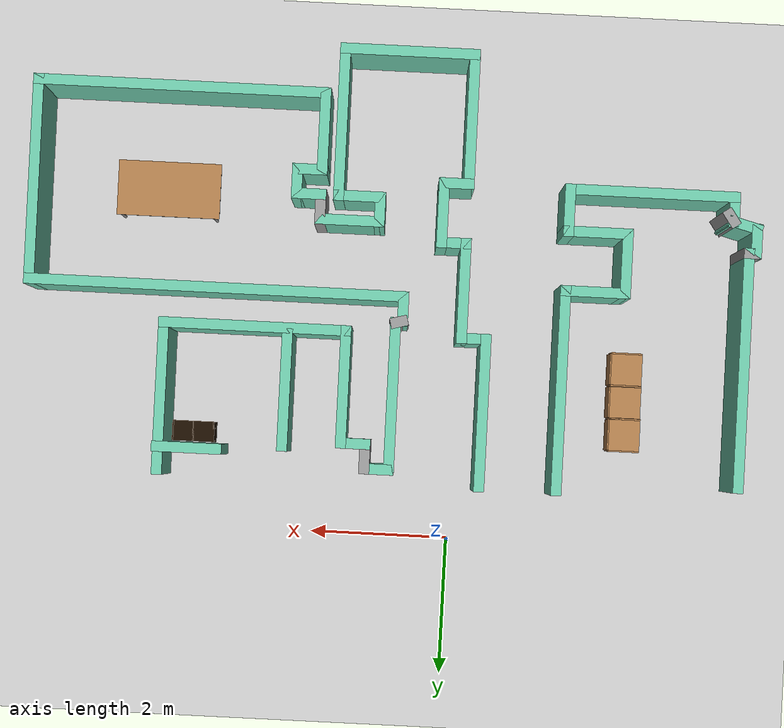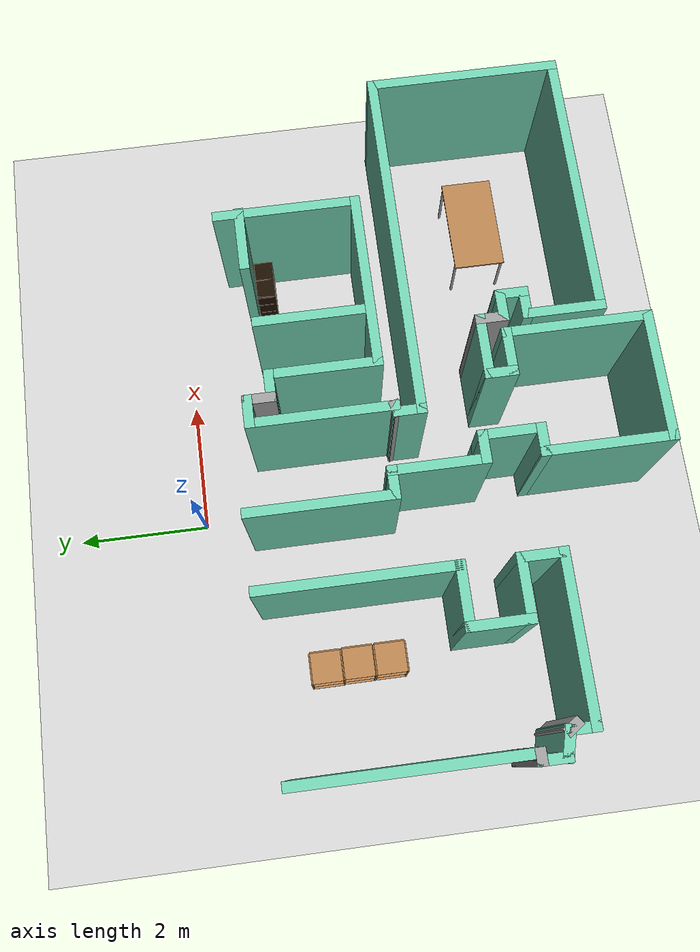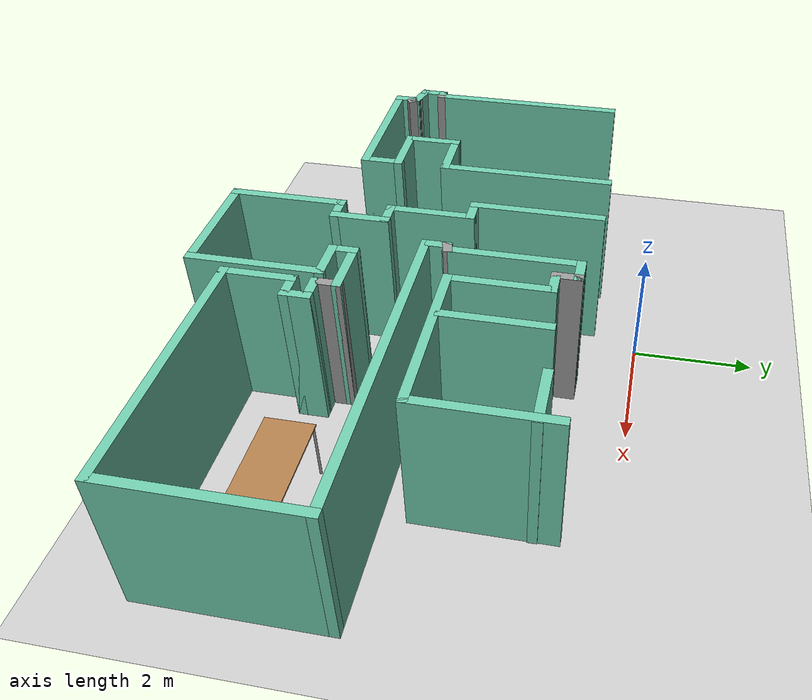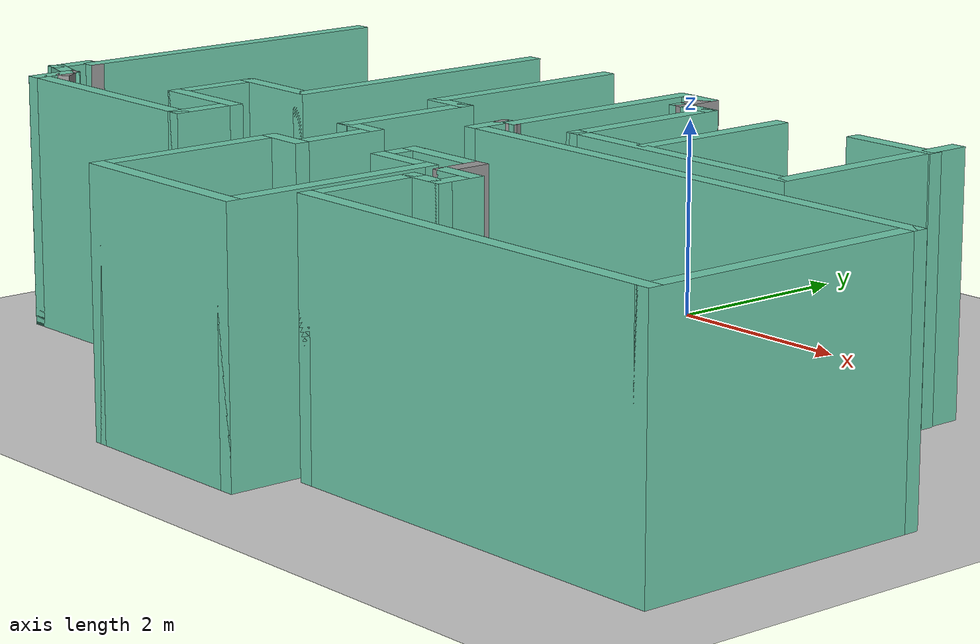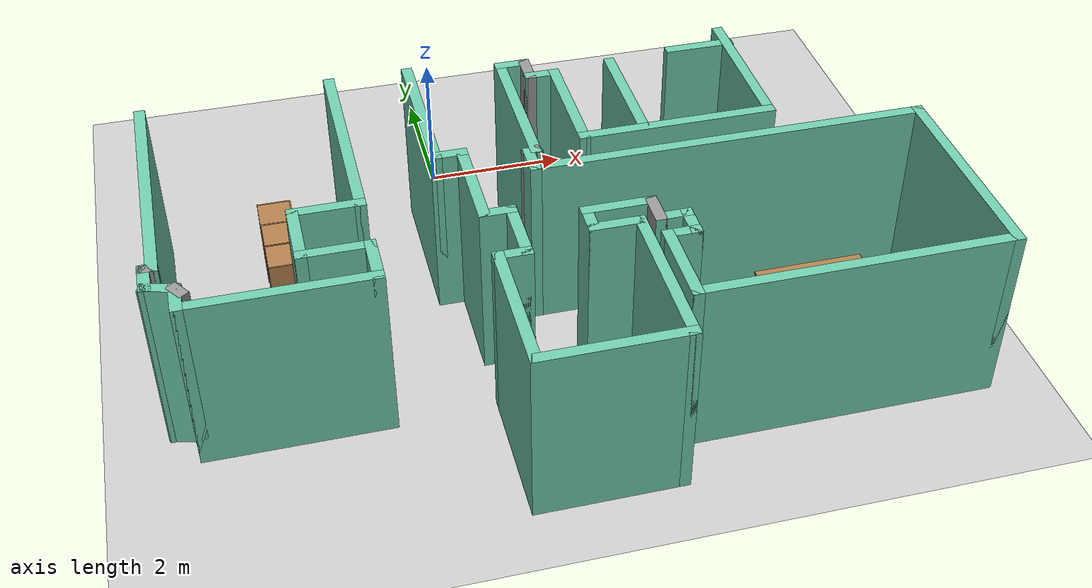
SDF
<sdf version="1.6">
 <world name="default">
  <model name="ground_plane">
   <static>1</static>
   <link name="link">
    <collision name="collision">
     <geometry><plane><normal>0 0 1</normal><size>100 100</size></plane></geometry>
     <surface><friction><ode><mu>100</mu><mu2>50</mu2></ode></friction></surface>
    </collision>
    <visual name="visual">
     <cast_shadows>0</cast_shadows>
     <geometry><plane><normal>0 0 1</normal><size>100 100</size></plane></geometry>
     <material>
      <script><uri>file://media/materials/scripts/gazebo.material</uri><name>Gazebo/Grey</name></script>
     </material>
    </visual>
   </link>
  </model>
  <model name="map_11">
   <pose>0.213911 -0.396014 0 0 -0 0</pose>
   <link name="Wall_102">
    <collision name="Wall_102_Collision">
     <geometry><box><size>1.75 0.15 2.5</size></box></geometry>
     <pose>0 0 1.25 0 -0 0</pose>
    </collision>
    <visual name="Wall_102_Visual">
     <pose>0 0 1.25 0 -0 0</pose>
     <geometry><box><size>1.75 0.15 2.5</size></box></geometry>
     <material>
      <script><uri>file://media/materials/scripts/gazebo.material</uri><name>Gazebo/Grey</name></script>
      <ambient>0.435294 0.796078 0.67451 1</ambient>
     </material>
     <meta><layer>0</layer></meta>
    </visual>
    <pose>2.21384 -1.64657 0 0 -0 1.5708</pose>
   </link>
   <link name="Wall_104">
    <collision name="Wall_104_Collision">
     <geometry><box><size>1 0.15 2.5</size></box></geometry>
     <pose>0 0 1.25 0 -0 0</pose>
    </collision>
    <visual name="Wall_104_Visual">
     <pose>0 0 1.25 0 -0 0</pose>
     <geometry><box><size>1 0.15 2.5</size></box></geometry>
     <material>
      <script><uri>file://media/materials/scripts/gazebo.material</uri><name>Gazebo/Grey</name></script>
      <ambient>0.435294 0.796078 0.67451 1</ambient>
     </material>
     <meta><layer>0</layer></meta>
    </visual>
    <pose>3.5727 -0.757031 0 0 -0 0</pose>
   </link>
   <link name="Wall_17">
    <collision name="Wall_17_Collision">
     <geometry><box><size>3.5 0.15 2.5</size></box></geometry>
     <pose>0 0 1.25 0 -0 0</pose>
    </collision>
    <visual name="Wall_17_Visual">
     <pose>0 0 1.25 0 -0 0</pose>
     <geometry><box><size>3.5 0.15 2.5</size></box></geometry>
     <material>
      <script><uri>file://media/materials/scripts/gazebo.material</uri><name>Gazebo/Grey</name></script>
      <ambient>0.435294 0.796078 0.67451 1</ambient>
     </material>
     <meta><layer>0</layer></meta>
    </visual>
    <pose>-4.30363 -2.24059 0 0 -0 -1.5708</pose>
   </link>
   <link name="Wall_18">
    <collision name="Wall_18_Collision">
     <geometry><box><size>0.25 0.15 2.5</size></box></geometry>
     <pose>0 0 1.25 0 -0 0</pose>
    </collision>
    <visual name="Wall_18_Visual">
     <pose>0 0 1.25 0 -0 0</pose>
     <geometry><box><size>0.25 0.15 2.5</size></box></geometry>
     <material>
      <script><uri>file://media/materials/scripts/gazebo.material</uri><name>Gazebo/Grey</name></script>
      <ambient>1 1 1 1</ambient>
     </material>
     <meta><layer>0</layer></meta>
    </visual>
    <pose>-4.35363 -3.91559 0 0 -0 3.14159</pose>
   </link>
   <link name="Wall_19">
    <collision name="Wall_19_Collision">
     <geometry><box><size>0.5 0.15 2.5</size></box></geometry>
     <pose>0 0 1.25 0 -0 0</pose>
    </collision>
    <visual name="Wall_19_Visual">
     <pose>0 0 1.25 0 -0 0</pose>
     <geometry><box><size>0.5 0.15 2.5</size></box></geometry>
     <material>
      <script><uri>file://media/materials/scripts/gazebo.material</uri><name>Gazebo/Grey</name></script>
      <ambient>0.435294 0.796078 0.67451 1</ambient>
     </material>
     <meta><layer>0</layer></meta>
    </visual>
    <pose>-4.40363 -4.09059 0 0 -0 -1.5708</pose>
   </link>
   <link name="Wall_20">
    <collision name="Wall_20_Collision">
     <geometry><box><size>0.5 0.15 2.5</size></box></geometry>
     <pose>0 0 1.25 0 -0 0</pose>
    </collision>
    <visual name="Wall_20_Visual">
     <pose>0 0 1.25 0 -0 0</pose>
     <geometry><box><size>0.5 0.15 2.5</size></box></geometry>
     <material>
      <script><uri>file://media/materials/scripts/gazebo.material</uri><name>Gazebo/Grey</name></script>
      <ambient>0.435294 0.796078 0.67451 1</ambient>
     </material>
     <meta><layer>0</layer></meta>
    </visual>
    <pose>-4.23459 -4.31088 0 0 -0 -0.261799</pose>
   </link>
   <link name="Wall_21">
    <collision name="Wall_21_Collision">
     <geometry><box><size>0.271718 0.15 2.5</size></box></geometry>
     <pose>0 0 1.25 0 -0 0</pose>
    </collision>
    <visual name="Wall_21_Visual">
     <pose>0 0 1.25 0 -0 0</pose>
     <geometry><box><size>0.271718 0.15 2.5</size></box></geometry>
     <material>
      <script><uri>file://media/materials/scripts/gazebo.material</uri><name>Gazebo/Grey</name></script>
      <ambient>1 1 1 1</ambient>
     </material>
     <meta><layer>0</layer></meta>
    </visual>
    <pose>-4.03086 -4.40617 0 0 -0 -0.964164</pose>
   </link>
   <link name="Wall_27">
    <collision name="Wall_27_Collision">
     <geometry><box><size>0.5 0.15 2.5</size></box></geometry>
     <pose>0 0 1.25 0 -0 0</pose>
    </collision>
    <visual name="Wall_27_Visual">
     <pose>0 0 1.25 0 -0 0</pose>
     <geometry><box><size>0.5 0.15 2.5</size></box></geometry>
     <material>
      <script><uri>file://media/materials/scripts/gazebo.material</uri><name>Gazebo/Grey</name></script>
      <ambient>0.435294 0.796078 0.67451 1</ambient>
     </material>
     <meta><layer>0</layer></meta>
    </visual>
    <pose>-4.06555 -4.53117 0 0 -0 -1.5708</pose>
   </link>
   <link name="Wall_28">
    <collision name="Wall_28_Collision">
     <geometry><box><size>2.5 0.15 2.5</size></box></geometry>
     <pose>0 0 1.25 0 -0 0</pose>
    </collision>
    <visual name="Wall_28_Visual">
     <pose>0 0 1.25 0 -0 0</pose>
     <geometry><box><size>2.5 0.15 2.5</size></box></geometry>
     <material>
      <script><uri>file://media/materials/scripts/gazebo.material</uri><name>Gazebo/Grey</name></script>
      <ambient>0.435294 0.796078 0.67451 1</ambient>
     </material>
     <meta><layer>0</layer></meta>
    </visual>
    <pose>-2.89055 -4.70617 0 0 -0 0</pose>
   </link>
   <link name="Wall_29">
    <collision name="Wall_29_Collision">
     <geometry><box><size>0.75 0.15 2.5</size></box></geometry>
     <pose>0 0 1.25 0 -0 0</pose>
    </collision>
    <visual name="Wall_29_Visual">
     <pose>0 0 1.25 0 -0 0</pose>
     <geometry><box><size>0.75 0.15 2.5</size></box></geometry>
     <material>
      <script><uri>file://media/materials/scripts/gazebo.material</uri><name>Gazebo/Grey</name></script>
      <ambient>0.435294 0.796078 0.67451 1</ambient>
     </material>
     <meta><layer>0</layer></meta>
    </visual>
    <pose>-1.71555 -4.40617 0 0 -0 1.5708</pose>
   </link>
   <link name="Wall_30">
    <collision name="Wall_30_Collision">
     <geometry><box><size>1 0.15 2.5</size></box></geometry>
     <pose>0 0 1.25 0 -0 0</pose>
    </collision>
    <visual name="Wall_30_Visual">
     <pose>0 0 1.25 0 -0 0</pose>
     <geometry><box><size>1 0.15 2.5</size></box></geometry>
     <material>
      <script><uri>file://media/materials/scripts/gazebo.material</uri><name>Gazebo/Grey</name></script>
      <ambient>0.435294 0.796078 0.67451 1</ambient>
     </material>
     <meta><layer>0</layer></meta>
    </visual>
    <pose>-2.14055 -4.10617 0 0 -0 3.14159</pose>
   </link>
   <link name="Wall_31">
    <collision name="Wall_31_Collision">
     <geometry><box><size>1 0.15 2.5</size></box></geometry>
     <pose>0 0 1.25 0 -0 0</pose>
    </collision>
    <visual name="Wall_31_Visual">
     <pose>0 0 1.25 0 -0 0</pose>
     <geometry><box><size>1 0.15 2.5</size></box></geometry>
     <material>
      <script><uri>file://media/materials/scripts/gazebo.material</uri><name>Gazebo/Grey</name></script>
      <ambient>0.435294 0.796078 0.67451 1</ambient>
     </material>
     <meta><layer>0</layer></meta>
    </visual>
    <pose>-2.56555 -3.68117 0 0 -0 1.5708</pose>
   </link>
   <link name="Wall_32">
    <collision name="Wall_32_Collision">
     <geometry><box><size>1 0.15 2.5</size></box></geometry>
     <pose>0 0 1.25 0 -0 0</pose>
    </collision>
    <visual name="Wall_32_Visual">
     <pose>0 0 1.25 0 -0 0</pose>
     <geometry><box><size>1 0.15 2.5</size></box></geometry>
     <material>
      <script><uri>file://media/materials/scripts/gazebo.material</uri><name>Gazebo/Grey</name></script>
      <ambient>0.435294 0.796078 0.67451 1</ambient>
     </material>
     <meta><layer>0</layer></meta>
    </visual>
    <pose>-2.14055 -3.25617 0 0 -0 0</pose>
   </link>
   <link name="Wall_33">
    <collision name="Wall_33_Collision">
     <geometry><box><size>3 0.15 2.5</size></box></geometry>
     <pose>0 0 1.25 0 -0 0</pose>
    </collision>
    <visual name="Wall_33_Visual">
     <pose>0 0 1.25 0 -0 0</pose>
     <geometry><box><size>3 0.15 2.5</size></box></geometry>
     <material>
      <script><uri>file://media/materials/scripts/gazebo.material</uri><name>Gazebo/Grey</name></script>
      <ambient>0.435294 0.796078 0.67451 1</ambient>
     </material>
     <meta><layer>0</layer></meta>
    </visual>
    <pose>-1.71555 -1.83117 0 0 -0 1.5708</pose>
   </link>
   <link name="Wall_35">
    <collision name="Wall_35_Collision">
     <geometry><box><size>2.25 0.15 2.5</size></box></geometry>
     <pose>0 0 1.25 0 -0 0</pose>
    </collision>
    <visual name="Wall_35_Visual">
     <pose>0 0 1.25 0 -0 0</pose>
     <geometry><box><size>2.25 0.15 2.5</size></box></geometry>
     <material>
      <script><uri>file://media/materials/scripts/gazebo.material</uri><name>Gazebo/Grey</name></script>
      <ambient>0.435294 0.796078 0.67451 1</ambient>
     </material>
     <meta><layer>0</layer></meta>
    </visual>
    <pose>-0.615553 -1.45617 0 0 -0 -1.5708</pose>
   </link>
   <link name="Wall_36">
    <collision name="Wall_36_Collision">
     <geometry><box><size>0.5 0.15 2.5</size></box></geometry>
     <pose>0 0 1.25 0 -0 0</pose>
    </collision>
    <visual name="Wall_36_Visual">
     <pose>0 0 1.25 0 -0 0</pose>
     <geometry><box><size>0.5 0.15 2.5</size></box></geometry>
     <material>
      <script><uri>file://media/materials/scripts/gazebo.material</uri><name>Gazebo/Grey</name></script>
      <ambient>0.435294 0.796078 0.67451 1</ambient>
     </material>
     <meta><layer>0</layer></meta>
    </visual>
    <pose>-0.440553 -2.50617 0 0 -0 0</pose>
   </link>
   <link name="Wall_37">
    <collision name="Wall_37_Collision">
     <geometry><box><size>1.5 0.15 2.5</size></box></geometry>
     <pose>0 0 1.25 0 -0 0</pose>
    </collision>
    <visual name="Wall_37_Visual">
     <pose>0 0 1.25 0 -0 0</pose>
     <geometry><box><size>1.5 0.15 2.5</size></box></geometry>
     <material>
      <script><uri>file://media/materials/scripts/gazebo.material</uri><name>Gazebo/Grey</name></script>
      <ambient>0.435294 0.796078 0.67451 1</ambient>
     </material>
     <meta><layer>0</layer></meta>
    </visual>
    <pose>-0.265553 -3.18117 0 0 -0 -1.5708</pose>
   </link>
   <link name="Wall_38">
    <collision name="Wall_38_Collision">
     <geometry><box><size>0.5 0.15 2.5</size></box></geometry>
     <pose>0 0 1.25 0 -0 0</pose>
    </collision>
    <visual name="Wall_38_Visual">
     <pose>0 0 1.25 0 -0 0</pose>
     <geometry><box><size>0.5 0.15 2.5</size></box></geometry>
     <material>
      <script><uri>file://media/materials/scripts/gazebo.material</uri><name>Gazebo/Grey</name></script>
      <ambient>0.435294 0.796078 0.67451 1</ambient>
     </material>
     <meta><layer>0</layer></meta>
    </visual>
    <pose>-0.090554 -3.85617 0 0 -0 0</pose>
   </link>
   <link name="Wall_39">
    <collision name="Wall_39_Collision">
     <geometry><box><size>1 0.15 2.5</size></box></geometry>
     <pose>0 0 1.25 0 -0 0</pose>
    </collision>
    <visual name="Wall_39_Visual">
     <pose>0 0 1.25 0 -0 0</pose>
     <geometry><box><size>1 0.15 2.5</size></box></geometry>
     <material>
      <script><uri>file://media/materials/scripts/gazebo.material</uri><name>Gazebo/Grey</name></script>
      <ambient>0.435294 0.796078 0.67451 1</ambient>
     </material>
     <meta><layer>0</layer></meta>
    </visual>
    <pose>0.084447 -4.28117 0 0 -0 -1.5708</pose>
   </link>
   <link name="Wall_40">
    <collision name="Wall_40_Collision">
     <geometry><box><size>0.5 0.15 2.5</size></box></geometry>
     <pose>0 0 1.25 0 -0 0</pose>
    </collision>
    <visual name="Wall_40_Visual">
     <pose>0 0 1.25 0 -0 0</pose>
     <geometry><box><size>0.5 0.15 2.5</size></box></geometry>
     <material>
      <script><uri>file://media/materials/scripts/gazebo.material</uri><name>Gazebo/Grey</name></script>
      <ambient>0.435294 0.796078 0.67451 1</ambient>
     </material>
     <meta><layer>0</layer></meta>
    </visual>
    <pose>-0.090554 -4.70617 0 0 -0 3.14159</pose>
   </link>
   <link name="Wall_41">
    <collision name="Wall_41_Collision">
     <geometry><box><size>2 0.15 2.5</size></box></geometry>
     <pose>0 0 1.25 0 -0 0</pose>
    </collision>
    <visual name="Wall_41_Visual">
     <pose>0 0 1.25 0 -0 0</pose>
     <geometry><box><size>2 0.15 2.5</size></box></geometry>
     <material>
      <script><uri>file://media/materials/scripts/gazebo.material</uri><name>Gazebo/Grey</name></script>
      <ambient>0.435294 0.796078 0.67451 1</ambient>
     </material>
     <meta><layer>0</layer></meta>
    </visual>
    <pose>-0.265553 -5.63117 0 0 -0 -1.5708</pose>
   </link>
   <link name="Wall_42">
    <collision name="Wall_42_Collision">
     <geometry><box><size>2 0.15 2.5</size></box></geometry>
     <pose>0 0 1.25 0 -0 0</pose>
    </collision>
    <visual name="Wall_42_Visual">
     <pose>0 0 1.25 0 -0 0</pose>
     <geometry><box><size>2 0.15 2.5</size></box></geometry>
     <material>
      <script><uri>file://media/materials/scripts/gazebo.material</uri><name>Gazebo/Grey</name></script>
      <ambient>0.435294 0.796078 0.67451 1</ambient>
     </material>
     <meta><layer>0</layer></meta>
    </visual>
    <pose>0.659447 -6.55617 0 0 -0 0</pose>
   </link>
   <link name="Wall_43">
    <collision name="Wall_43_Collision">
     <geometry><box><size>2.25 0.15 2.5</size></box></geometry>
     <pose>0 0 1.25 0 -0 0</pose>
    </collision>
    <visual name="Wall_43_Visual">
     <pose>0 0 1.25 0 -0 0</pose>
     <geometry><box><size>2.25 0.15 2.5</size></box></geometry>
     <material>
      <script><uri>file://media/materials/scripts/gazebo.material</uri><name>Gazebo/Grey</name></script>
      <ambient>0.435294 0.796078 0.67451 1</ambient>
     </material>
     <meta><layer>0</layer></meta>
    </visual>
    <pose>1.58445 -5.50617 0 0 -0 1.5708</pose>
   </link>
   <link name="Wall_44">
    <collision name="Wall_44_Collision">
     <geometry><box><size>0.75 0.15 2.5</size></box></geometry>
     <pose>0 0 1.25 0 -0 0</pose>
    </collision>
    <visual name="Wall_44_Visual">
     <pose>0 0 1.25 0 -0 0</pose>
     <geometry><box><size>0.75 0.15 2.5</size></box></geometry>
     <material>
      <script><uri>file://media/materials/scripts/gazebo.material</uri><name>Gazebo/Grey</name></script>
      <ambient>0.435294 0.796078 0.67451 1</ambient>
     </material>
     <meta><layer>0</layer></meta>
    </visual>
    <pose>1.28445 -4.45617 0 0 -0 3.14159</pose>
   </link>
   <link name="Wall_45">
    <collision name="Wall_45_Collision">
     <geometry><box><size>0.5 0.15 2.5</size></box></geometry>
     <pose>0 0 1.25 0 -0 0</pose>
    </collision>
    <visual name="Wall_45_Visual">
     <pose>0 0 1.25 0 -0 0</pose>
     <geometry><box><size>0.5 0.15 2.5</size></box></geometry>
     <material>
      <script><uri>file://media/materials/scripts/gazebo.material</uri><name>Gazebo/Grey</name></script>
      <ambient>0.435294 0.796078 0.67451 1</ambient>
     </material>
     <meta><layer>0</layer></meta>
    </visual>
    <pose>0.984447 -4.28117 0 0 -0 1.5708</pose>
   </link>
   <link name="Wall_46">
    <collision name="Wall_46_Collision">
     <geometry><box><size>1 0.15 2.5</size></box></geometry>
     <pose>0 0 1.25 0 -0 0</pose>
    </collision>
    <visual name="Wall_46_Visual">
     <pose>0 0 1.25 0 -0 0</pose>
     <geometry><box><size>1 0.15 2.5</size></box></geometry>
     <material>
      <script><uri>file://media/materials/scripts/gazebo.material</uri><name>Gazebo/Grey</name></script>
      <ambient>0.435294 0.796078 0.67451 1</ambient>
     </material>
     <meta><layer>0</layer></meta>
    </visual>
    <pose>1.40945 -4.10617 0 0 -0 0</pose>
   </link>
   <link name="Wall_47">
    <collision name="Wall_47_Collision">
     <geometry><box><size>0.5 0.15 2.5</size></box></geometry>
     <pose>0 0 1.25 0 -0 0</pose>
    </collision>
    <visual name="Wall_47_Visual">
     <pose>0 0 1.25 0 -0 0</pose>
     <geometry><box><size>0.5 0.15 2.5</size></box></geometry>
     <material>
      <script><uri>file://media/materials/scripts/gazebo.material</uri><name>Gazebo/Grey</name></script>
      <ambient>1 1 1 1</ambient>
     </material>
     <meta><layer>0</layer></meta>
    </visual>
    <pose>1.83445 -4.28117 0 0 -0 -1.5708</pose>
   </link>
   <link name="Wall_48">
    <collision name="Wall_48_Collision">
     <geometry><box><size>0.5 0.15 2.5</size></box></geometry>
     <pose>0 0 1.25 0 -0 0</pose>
    </collision>
    <visual name="Wall_48_Visual">
     <pose>0 0 1.25 0 -0 0</pose>
     <geometry><box><size>0.5 0.15 2.5</size></box></geometry>
     <material>
      <script><uri>file://media/materials/scripts/gazebo.material</uri><name>Gazebo/Grey</name></script>
      <ambient>0.435294 0.796078 0.67451 1</ambient>
     </material>
     <meta><layer>0</layer></meta>
    </visual>
    <pose>2.00945 -4.45617 0 0 -0 0</pose>
   </link>
   <link name="Wall_49">
    <collision name="Wall_49_Collision">
     <geometry><box><size>0.5 0.15 2.5</size></box></geometry>
     <pose>0 0 1.25 0 -0 0</pose>
    </collision>
    <visual name="Wall_49_Visual">
     <pose>0 0 1.25 0 -0 0</pose>
     <geometry><box><size>0.5 0.15 2.5</size></box></geometry>
     <material>
      <script><uri>file://media/materials/scripts/gazebo.material</uri><name>Gazebo/Grey</name></script>
      <ambient>0.435294 0.796078 0.67451 1</ambient>
     </material>
     <meta><layer>0</layer></meta>
    </visual>
    <pose>2.18445 -4.63117 0 0 -0 -1.5708</pose>
   </link>
   <link name="Wall_50">
    <collision name="Wall_50_Collision">
     <geometry><box><size>0.5 0.15 2.5</size></box></geometry>
     <pose>0 0 1.25 0 -0 0</pose>
    </collision>
    <visual name="Wall_50_Visual">
     <pose>0 0 1.25 0 -0 0</pose>
     <geometry><box><size>0.5 0.15 2.5</size></box></geometry>
     <material>
      <script><uri>file://media/materials/scripts/gazebo.material</uri><name>Gazebo/Grey</name></script>
      <ambient>0.435294 0.796078 0.67451 1</ambient>
     </material>
     <meta><layer>0</layer></meta>
    </visual>
    <pose>2.00945 -4.80617 0 0 -0 3.14159</pose>
   </link>
   <link name="Wall_51">
    <collision name="Wall_51_Collision">
     <geometry><box><size>1.25 0.15 2.5</size></box></geometry>
     <pose>0 0 1.25 0 -0 0</pose>
    </collision>
    <visual name="Wall_51_Visual">
     <pose>0 0 1.25 0 -0 0</pose>
     <geometry><box><size>1.25 0.15 2.5</size></box></geometry>
     <material>
      <script><uri>file://media/materials/scripts/gazebo.material</uri><name>Gazebo/Grey</name></script>
      <ambient>0.435294 0.796078 0.67451 1</ambient>
     </material>
     <meta><layer>0</layer></meta>
    </visual>
    <pose>1.83445 -5.35617 0 0 -0 -1.5708</pose>
   </link>
   <link name="Wall_52">
    <collision name="Wall_52_Collision">
     <geometry><box><size>4.25 0.15 2.5</size></box></geometry>
     <pose>0 0 1.25 0 -0 0</pose>
    </collision>
    <visual name="Wall_52_Visual">
     <pose>0 0 1.25 0 -0 0</pose>
     <geometry><box><size>4.25 0.15 2.5</size></box></geometry>
     <material>
      <script><uri>file://media/materials/scripts/gazebo.material</uri><name>Gazebo/Grey</name></script>
      <ambient>0.435294 0.796078 0.67451 1</ambient>
     </material>
     <meta><layer>0</layer></meta>
    </visual>
    <pose>3.88445 -5.90617 0 0 -0 0</pose>
   </link>
   <link name="Wall_53">
    <collision name="Wall_53_Collision">
     <geometry><box><size>3 0.15 2.5</size></box></geometry>
     <pose>0 0 1.25 0 -0 0</pose>
    </collision>
    <visual name="Wall_53_Visual">
     <pose>0 0 1.25 0 -0 0</pose>
     <geometry><box><size>3 0.15 2.5</size></box></geometry>
     <material>
      <script><uri>file://media/materials/scripts/gazebo.material</uri><name>Gazebo/Grey</name></script>
      <ambient>0.435294 0.796078 0.67451 1</ambient>
     </material>
     <meta><layer>0</layer></meta>
    </visual>
    <pose>5.93445 -4.48117 0 0 -0 1.5708</pose>
   </link>
   <link name="Wall_54">
    <collision name="Wall_54_Collision">
     <geometry><box><size>5.5 0.15 2.5</size></box></geometry>
     <pose>0 0 1.25 0 -0 0</pose>
    </collision>
    <visual name="Wall_54_Visual">
     <pose>0 0 1.25 0 -0 0</pose>
     <geometry><box><size>5.5 0.15 2.5</size></box></geometry>
     <material>
      <script><uri>file://media/materials/scripts/gazebo.material</uri><name>Gazebo/Grey</name></script>
      <ambient>0.435294 0.796078 0.67451 1</ambient>
     </material>
     <meta><layer>0</layer></meta>
    </visual>
    <pose>3.25945 -3.05617 0 0 -0 3.14159</pose>
   </link>
   <link name="Wall_55">
    <collision name="Wall_55_Collision">
     <geometry><box><size>0.5 0.15 2.5</size></box></geometry>
     <pose>0 0 1.25 0 -0 0</pose>
    </collision>
    <visual name="Wall_55_Visual">
     <pose>0 0 1.25 0 -0 0</pose>
     <geometry><box><size>0.5 0.15 2.5</size></box></geometry>
     <material>
      <script><uri>file://media/materials/scripts/gazebo.material</uri><name>Gazebo/Grey</name></script>
      <ambient>0.435294 0.796078 0.67451 1</ambient>
     </material>
     <meta><layer>0</layer></meta>
    </visual>
    <pose>0.584447 -2.88117 0 0 -0 1.5708</pose>
   </link>
   <link name="Wall_56">
    <collision name="Wall_56_Collision">
     <geometry><box><size>0.25 0.15 2.5</size></box></geometry>
     <pose>0 0 1.25 0 -0 0</pose>
    </collision>
    <visual name="Wall_56_Visual">
     <pose>0 0 1.25 0 -0 0</pose>
     <geometry><box><size>0.25 0.15 2.5</size></box></geometry>
     <material>
      <script><uri>file://media/materials/scripts/gazebo.material</uri><name>Gazebo/Grey</name></script>
      <ambient>1 1 1 1</ambient>
     </material>
     <meta><layer>0</layer></meta>
    </visual>
    <pose>0.632743 -2.69323 0 0 -0 0.261799</pose>
   </link>
   <link name="Wall_57">
    <collision name="Wall_57_Collision">
     <geometry><box><size>2.25 0.15 2.5</size></box></geometry>
     <pose>0 0 1.25 0 -0 0</pose>
    </collision>
    <visual name="Wall_57_Visual">
     <pose>0 0 1.25 0 -0 0</pose>
     <geometry><box><size>2.25 0.15 2.5</size></box></geometry>
     <material>
      <script><uri>file://media/materials/scripts/gazebo.material</uri><name>Gazebo/Grey</name></script>
      <ambient>0.435294 0.796078 0.67451 1</ambient>
     </material>
     <meta><layer>0</layer></meta>
    </visual>
    <pose>0.681039 -1.63029 0 0 -0 1.5708</pose>
   </link>
   <link name="Wall_58">
    <collision name="Wall_58_Collision">
     <geometry><box><size>0.5 0.15 2.5</size></box></geometry>
     <pose>0 0 1.25 0 -0 0</pose>
    </collision>
    <visual name="Wall_58_Visual">
     <pose>0 0 1.25 0 -0 0</pose>
     <geometry><box><size>0.5 0.15 2.5</size></box></geometry>
     <material>
      <script><uri>file://media/materials/scripts/gazebo.material</uri><name>Gazebo/Grey</name></script>
      <ambient>0.435294 0.796078 0.67451 1</ambient>
     </material>
     <meta><layer>0</layer></meta>
    </visual>
    <pose>0.856039 -0.580291 0 0 -0 0</pose>
   </link>
   <link name="Wall_59">
    <collision name="Wall_59_Collision">
     <geometry><box><size>0.5 0.15 2.5</size></box></geometry>
     <pose>0 0 1.25 0 -0 0</pose>
    </collision>
    <visual name="Wall_59_Visual">
     <pose>0 0 1.25 0 -0 0</pose>
     <geometry><box><size>0.5 0.15 2.5</size></box></geometry>
     <material>
      <script><uri>file://media/materials/scripts/gazebo.material</uri><name>Gazebo/Grey</name></script>
      <ambient>1 1 1 1</ambient>
     </material>
     <meta><layer>0</layer></meta>
    </visual>
    <pose>1.03104 -0.755291 0 0 -0 -1.5708</pose>
   </link>
   <link name="Wall_60">
    <collision name="Wall_60_Collision">
     <geometry><box><size>0.5 0.15 2.5</size></box></geometry>
     <pose>0 0 1.25 0 -0 0</pose>
    </collision>
    <visual name="Wall_60_Visual">
     <pose>0 0 1.25 0 -0 0</pose>
     <geometry><box><size>0.5 0.15 2.5</size></box></geometry>
     <material>
      <script><uri>file://media/materials/scripts/gazebo.material</uri><name>Gazebo/Grey</name></script>
      <ambient>0.435294 0.796078 0.67451 1</ambient>
     </material>
     <meta><layer>0</layer></meta>
    </visual>
    <pose>1.20604 -0.930291 0 0 -0 0</pose>
   </link>
   <link name="Wall_61">
    <collision name="Wall_61_Collision">
     <geometry><box><size>1.75 0.15 2.5</size></box></geometry>
     <pose>0 0 1.25 0 -0 0</pose>
    </collision>
    <visual name="Wall_61_Visual">
     <pose>0 0 1.25 0 -0 0</pose>
     <geometry><box><size>1.75 0.15 2.5</size></box></geometry>
     <material>
      <script><uri>file://media/materials/scripts/gazebo.material</uri><name>Gazebo/Grey</name></script>
      <ambient>0.435294 0.796078 0.67451 1</ambient>
     </material>
     <meta><layer>0</layer></meta>
    </visual>
    <pose>1.38104 -1.73029 0 0 -0 -1.5708</pose>
   </link>
   <link name="Wall_62">
    <collision name="Wall_62_Collision">
     <geometry><box><size>2.75 0.15 2.5</size></box></geometry>
     <pose>0 0 1.25 0 -0 0</pose>
    </collision>
    <visual name="Wall_62_Visual">
     <pose>0 0 1.25 0 -0 0</pose>
     <geometry><box><size>2.75 0.15 2.5</size></box></geometry>
     <material>
      <script><uri>file://media/materials/scripts/gazebo.material</uri><name>Gazebo/Grey</name></script>
      <ambient>0.435294 0.796078 0.67451 1</ambient>
     </material>
     <meta><layer>0</layer></meta>
    </visual>
    <pose>2.68104 -2.53029 0 0 -0 0</pose>
   </link>
   <link name="Wall_63">
    <collision name="Wall_63_Collision">
     <geometry><box><size>2.25 0.15 2.5</size></box></geometry>
     <pose>0 0 1.25 0 -0 0</pose>
    </collision>
    <visual name="Wall_63_Visual">
     <pose>0 0 1.25 0 -0 0</pose>
     <geometry><box><size>2.25 0.15 2.5</size></box></geometry>
     <material>
      <script><uri>file://media/materials/scripts/gazebo.material</uri><name>Gazebo/Grey</name></script>
      <ambient>0.435294 0.796078 0.67451 1</ambient>
     </material>
     <meta><layer>0</layer></meta>
    </visual>
    <pose>3.98104 -1.48029 0 0 -0 1.5708</pose>
   </link>
   <static>1</static>
  </model>
  <model name="cabinet">
   <static>1</static>
   <link name="cabinet_bottom_plate">
    <inertial>
     <pose>0 0 -1 0 -0 0</pose>
     <inertia><ixx>2.05</ixx><ixy>0</ixy><ixz>0</ixz><iyy>2.05</iyy><iyz>0</iyz><izz>2.05</izz></inertia>
     <mass>25</mass>
    </inertial>
    <collision name="cabinet_bottom_plate_geom">
     <pose>0 0 0.01 0 -0 0</pose>
     <geometry><box><size>0.45 0.45 0.02</size></box></geometry>
    </collision>
    <visual name="cabinet_bottom_plate_geom_visual">
     <pose>0 0 0.01 0 -0 0</pose>
     <geometry><box><size>0.45 0.45 0.02</size></box></geometry>
     <material>
      <script><uri>file://media/materials/scripts/gazebo.material</uri><name>Gazebo/Wood</name></script>
     </material>
    </visual>
    <collision name="cabinet_bottom_plate_geom_cabinet_back_plate">
     <pose>0.235 0 0.51 0 -0 0</pose>
     <geometry><box><size>0.02 0.45 1.02</size></box></geometry>
    </collision>
    <visual name="cabinet_bottom_plate_geom_cabinet_back_plate_visual">
     <pose>0.235 0 0.51 0 -0 0</pose>
     <geometry><box><size>0.02 0.45 1.02</size></box></geometry>
     <material>
      <script><uri>file://media/materials/scripts/gazebo.material</uri><name>Gazebo/Wood</name></script>
     </material>
    </visual>
    <collision name="cabinet_bottom_plate_geom_cabinet_left_plate">
     <pose>0 0.235 0.51 0 -0 0</pose>
     <geometry><box><size>0.45 0.02 1.02</size></box></geometry>
    </collision>
    <visual name="cabinet_bottom_plate_geom_cabinet_left_plate_visual">
     <pose>0 0.235 0.51 0 -0 0</pose>
     <geometry><box><size>0.45 0.02 1.02</size></box></geometry>
     <material>
      <script><uri>file://media/materials/scripts/gazebo.material</uri><name>Gazebo/Wood</name></script>
     </material>
    </visual>
    <collision name="cabinet_bottom_plate_geom_cabinet_middle_plate">
     <pose>0 0 0.51 0 -0 0</pose>
     <geometry><box><size>0.45 0.45 0.02</size></box></geometry>
    </collision>
    <visual name="cabinet_bottom_plate_geom_cabinet_middle_plate_visual">
     <pose>0 0 0.51 0 -0 0</pose>
     <geometry><box><size>0.45 0.45 0.02</size></box></geometry>
     <material>
      <script><uri>file://media/materials/scripts/gazebo.material</uri><name>Gazebo/Wood</name></script>
     </material>
    </visual>
    <collision name="cabinet_bottom_plate_geom_cabinet_right_plate">
     <pose>0 -0.235 0.51 0 -0 0</pose>
     <geometry><box><size>0.45 0.02 1.02</size></box></geometry>
    </collision>
    <visual name="cabinet_bottom_plate_geom_cabinet_right_plate_visual">
     <pose>0 -0.235 0.51 0 -0 0</pose>
     <geometry><box><size>0.45 0.02 1.02</size></box></geometry>
     <material>
      <script><uri>file://media/materials/scripts/gazebo.material</uri><name>Gazebo/Wood</name></script>
     </material>
    </visual>
    <collision name="cabinet_bottom_plate_geom_cabinet_top_plate">
     <pose>0 0 1.01 0 -0 0</pose>
     <geometry><box><size>0.45 0.45 0.02</size></box></geometry>
    </collision>
    <visual name="cabinet_bottom_plate_geom_cabinet_top_plate_visual">
     <pose>0 0 1.01 0 -0 0</pose>
     <geometry><box><size>0.45 0.45 0.02</size></box></geometry>
     <material>
      <script><uri>file://media/materials/scripts/gazebo.material</uri><name>Gazebo/Wood</name></script>
     </material>
    </visual>
   </link>
   <pose>-2.51405 -1.63798 0 0 -0 0</pose>
  </model>
  <model name="cabinet_0">
   <static>1</static>
   <link name="cabinet_bottom_plate">
    <inertial>
     <pose>0 0 -1 0 -0 0</pose>
     <inertia><ixx>2.05</ixx><ixy>0</ixy><ixz>0</ixz><iyy>2.05</iyy><iyz>0</iyz><izz>2.05</izz></inertia>
     <mass>25</mass>
    </inertial>
    <collision name="cabinet_bottom_plate_geom">
     <pose>0 0 0.01 0 -0 0</pose>
     <geometry><box><size>0.45 0.45 0.02</size></box></geometry>
    </collision>
    <visual name="cabinet_bottom_plate_geom_visual">
     <pose>0 0 0.01 0 -0 0</pose>
     <geometry><box><size>0.45 0.45 0.02</size></box></geometry>
     <material>
      <script><uri>file://media/materials/scripts/gazebo.material</uri><name>Gazebo/Wood</name></script>
     </material>
    </visual>
    <collision name="cabinet_bottom_plate_geom_cabinet_back_plate">
     <pose>0.235 0 0.51 0 -0 0</pose>
     <geometry><box><size>0.02 0.45 1.02</size></box></geometry>
    </collision>
    <visual name="cabinet_bottom_plate_geom_cabinet_back_plate_visual">
     <pose>0.235 0 0.51 0 -0 0</pose>
     <geometry><box><size>0.02 0.45 1.02</size></box></geometry>
     <material>
      <script><uri>file://media/materials/scripts/gazebo.material</uri><name>Gazebo/Wood</name></script>
     </material>
    </visual>
    <collision name="cabinet_bottom_plate_geom_cabinet_left_plate">
     <pose>0 0.235 0.51 0 -0 0</pose>
     <geometry><box><size>0.45 0.02 1.02</size></box></geometry>
    </collision>
    <visual name="cabinet_bottom_plate_geom_cabinet_left_plate_visual">
     <pose>0 0.235 0.51 0 -0 0</pose>
     <geometry><box><size>0.45 0.02 1.02</size></box></geometry>
     <material>
      <script><uri>file://media/materials/scripts/gazebo.material</uri><name>Gazebo/Wood</name></script>
     </material>
    </visual>
    <collision name="cabinet_bottom_plate_geom_cabinet_middle_plate">
     <pose>0 0 0.51 0 -0 0</pose>
     <geometry><box><size>0.45 0.45 0.02</size></box></geometry>
    </collision>
    <visual name="cabinet_bottom_plate_geom_cabinet_middle_plate_visual">
     <pose>0 0 0.51 0 -0 0</pose>
     <geometry><box><size>0.45 0.45 0.02</size></box></geometry>
     <material>
      <script><uri>file://media/materials/scripts/gazebo.material</uri><name>Gazebo/Wood</name></script>
     </material>
    </visual>
    <collision name="cabinet_bottom_plate_geom_cabinet_right_plate">
     <pose>0 -0.235 0.51 0 -0 0</pose>
     <geometry><box><size>0.45 0.02 1.02</size></box></geometry>
    </collision>
    <visual name="cabinet_bottom_plate_geom_cabinet_right_plate_visual">
     <pose>0 -0.235 0.51 0 -0 0</pose>
     <geometry><box><size>0.45 0.02 1.02</size></box></geometry>
     <material>
      <script><uri>file://media/materials/scripts/gazebo.material</uri><name>Gazebo/Wood</name></script>
     </material>
    </visual>
    <collision name="cabinet_bottom_plate_geom_cabinet_top_plate">
     <pose>0 0 1.01 0 -0 0</pose>
     <geometry><box><size>0.45 0.45 0.02</size></box></geometry>
    </collision>
    <visual name="cabinet_bottom_plate_geom_cabinet_top_plate_visual">
     <pose>0 0 1.01 0 -0 0</pose>
     <geometry><box><size>0.45 0.45 0.02</size></box></geometry>
     <material>
      <script><uri>file://media/materials/scripts/gazebo.material</uri><name>Gazebo/Wood</name></script>
     </material>
    </visual>
   </link>
   <pose>-2.50434 -2.11492 0 0 -0 0</pose>
  </model>
  <model name="cabinet_1">
   <static>1</static>
   <link name="cabinet_bottom_plate">
    <inertial>
     <pose>0 0 -1 0 -0 0</pose>
     <inertia><ixx>2.05</ixx><ixy>0</ixy><ixz>0</ixz><iyy>2.05</iyy><iyz>0</iyz><izz>2.05</izz></inertia>
     <mass>25</mass>
    </inertial>
    <collision name="cabinet_bottom_plate_geom">
     <pose>0 0 0.01 0 -0 0</pose>
     <geometry><box><size>0.45 0.45 0.02</size></box></geometry>
    </collision>
    <visual name="cabinet_bottom_plate_geom_visual">
     <pose>0 0 0.01 0 -0 0</pose>
     <geometry><box><size>0.45 0.45 0.02</size></box></geometry>
     <material>
      <script><uri>file://media/materials/scripts/gazebo.material</uri><name>Gazebo/Wood</name></script>
     </material>
    </visual>
    <collision name="cabinet_bottom_plate_geom_cabinet_back_plate">
     <pose>0.235 0 0.51 0 -0 0</pose>
     <geometry><box><size>0.02 0.45 1.02</size></box></geometry>
    </collision>
    <visual name="cabinet_bottom_plate_geom_cabinet_back_plate_visual">
     <pose>0.235 0 0.51 0 -0 0</pose>
     <geometry><box><size>0.02 0.45 1.02</size></box></geometry>
     <material>
      <script><uri>file://media/materials/scripts/gazebo.material</uri><name>Gazebo/Wood</name></script>
     </material>
    </visual>
    <collision name="cabinet_bottom_plate_geom_cabinet_left_plate">
     <pose>0 0.235 0.51 0 -0 0</pose>
     <geometry><box><size>0.45 0.02 1.02</size></box></geometry>
    </collision>
    <visual name="cabinet_bottom_plate_geom_cabinet_left_plate_visual">
     <pose>0 0.235 0.51 0 -0 0</pose>
     <geometry><box><size>0.45 0.02 1.02</size></box></geometry>
     <material>
      <script><uri>file://media/materials/scripts/gazebo.material</uri><name>Gazebo/Wood</name></script>
     </material>
    </visual>
    <collision name="cabinet_bottom_plate_geom_cabinet_middle_plate">
     <pose>0 0 0.51 0 -0 0</pose>
     <geometry><box><size>0.45 0.45 0.02</size></box></geometry>
    </collision>
    <visual name="cabinet_bottom_plate_geom_cabinet_middle_plate_visual">
     <pose>0 0 0.51 0 -0 0</pose>
     <geometry><box><size>0.45 0.45 0.02</size></box></geometry>
     <material>
      <script><uri>file://media/materials/scripts/gazebo.material</uri><name>Gazebo/Wood</name></script>
     </material>
    </visual>
    <collision name="cabinet_bottom_plate_geom_cabinet_right_plate">
     <pose>0 -0.235 0.51 0 -0 0</pose>
     <geometry><box><size>0.45 0.02 1.02</size></box></geometry>
    </collision>
    <visual name="cabinet_bottom_plate_geom_cabinet_right_plate_visual">
     <pose>0 -0.235 0.51 0 -0 0</pose>
     <geometry><box><size>0.45 0.02 1.02</size></box></geometry>
     <material>
      <script><uri>file://media/materials/scripts/gazebo.material</uri><name>Gazebo/Wood</name></script>
     </material>
    </visual>
    <collision name="cabinet_bottom_plate_geom_cabinet_top_plate">
     <pose>0 0 1.01 0 -0 0</pose>
     <geometry><box><size>0.45 0.45 0.02</size></box></geometry>
    </collision>
    <visual name="cabinet_bottom_plate_geom_cabinet_top_plate_visual">
     <pose>0 0 1.01 0 -0 0</pose>
     <geometry><box><size>0.45 0.45 0.02</size></box></geometry>
     <material>
      <script><uri>file://media/materials/scripts/gazebo.material</uri><name>Gazebo/Wood</name></script>
     </material>
    </visual>
   </link>
   <pose>-2.50166 -2.59516 0 0 -0 0</pose>
  </model>
  <model name="6_Cube_StorageE_0">
   <link name="Wall_0">
    <pose>0 0 0.01 0 -0 0</pose>
    <inertial>
     <mass>1.6201</mass>
     <inertia><ixx>0.0119</ixx><iyy>0.0631</iyy><izz>0.0513</izz><ixy>0</ixy><ixz>0</ixz><iyz>0</iyz></inertia>
    </inertial>
    <collision name="Wall_0_Collision"><geometry><box><size>0.616 0.296 0.02</size></box></geometry></collision>
    <visual name="Wall_0_Visual">
     <geometry><box><size>0.616 0.296 0.02</size></box></geometry>
     <material>
      <script><uri>file://media/materials/scripts/gazebo.material</uri><name>Gazebo/Grey</name></script>
      <ambient>0.105882 0.0509804 0 1</ambient>
     </material>
    </visual>
   </link>
   <joint name="0_2" type="fixed">
    <pose>-0.308 0 0 0 -0 0</pose>
    <parent>Wall_2</parent>
    <child>Wall_0</child>
    <axis>
     <xyz>1 0 0</xyz>
     <use_parent_model_frame>0</use_parent_model_frame>
     <limit><lower>-1e+16</lower><upper>1e+16</upper></limit>
    </axis>
   </joint>
   <joint name="0_12" type="fixed">
    <parent>Wall_12</parent>
    <child>Wall_0</child>
    <axis>
     <xyz>0 0 1</xyz>
     <use_parent_model_frame>0</use_parent_model_frame>
     <limit><lower>-1e+16</lower><upper>1e+16</upper></limit>
    </axis>
   </joint>
   <joint name="0_4" type="fixed">
    <pose>0.308 0 0 0 -0 0</pose>
    <parent>Wall_4</parent>
    <child>Wall_0</child>
    <axis>
     <xyz>1 0 0</xyz>
     <use_parent_model_frame>0</use_parent_model_frame>
     <limit><lower>-1e+16</lower><upper>1e+16</upper></limit>
    </axis>
   </joint>
   <link name="Wall_10">
    <pose>0 0 0.61 0 -0 0</pose>
    <inertial>
     <mass>1.6201</mass>
     <inertia><ixx>0.0119</ixx><iyy>0.0631</iyy><izz>0.0513</izz><ixy>0</ixy><ixz>0</ixz><iyz>0</iyz></inertia>
    </inertial>
    <collision name="Wall_10_Collision"><geometry><box><size>0.616 0.296 0.02</size></box></geometry></collision>
    <visual name="Wall_10_Visual">
     <geometry><box><size>0.616 0.296 0.02</size></box></geometry>
     <material>
      <script><uri>file://media/materials/scripts/gazebo.material</uri><name>Gazebo/Grey</name></script>
      <ambient>0.105882 0.0509804 0 1</ambient>
     </material>
    </visual>
   </link>
   <joint name="10_2" type="fixed">
    <pose>-0.308 0 0 0 -0 0</pose>
    <parent>Wall_2</parent>
    <child>Wall_10</child>
    <axis>
     <xyz>1 0 0</xyz>
     <use_parent_model_frame>0</use_parent_model_frame>
     <limit><lower>-1e+16</lower><upper>1e+16</upper></limit>
    </axis>
   </joint>
   <joint name="10_12" type="fixed">
    <parent>Wall_12</parent>
    <child>Wall_10</child>
    <axis>
     <xyz>0 0 1</xyz>
     <use_parent_model_frame>0</use_parent_model_frame>
     <limit><lower>-1e+16</lower><upper>1e+16</upper></limit>
    </axis>
   </joint>
   <joint name="10_4" type="fixed">
    <pose>0.308 0 0 0 -0 0</pose>
    <parent>Wall_4</parent>
    <child>Wall_10</child>
    <axis>
     <xyz>1 0 0</xyz>
     <use_parent_model_frame>0</use_parent_model_frame>
     <limit><lower>-1e+16</lower><upper>1e+16</upper></limit>
    </axis>
   </joint>
   <link name="Wall_12">
    <pose>0 0 0.4575 0 -0 0</pose>
    <inertial>
     <mass>2.4065</mass>
     <inertia><ixx>0.0177</ixx><iyy>0.1855</iyy><izz>0.168</izz><ixy>0</ixy><ixz>0</ixz><iyz>0</iyz></inertia>
    </inertial>
    <collision name="Wall_12_Collision"><geometry><box><size>0.02 0.296 0.915</size></box></geometry></collision>
    <visual name="Wall_12_Visual">
     <geometry><box><size>0.02 0.296 0.915</size></box></geometry>
     <material>
      <script><uri>file://media/materials/scripts/gazebo.material</uri><name>Gazebo/Grey</name></script>
      <ambient>0.105882 0.0509804 0 1</ambient>
     </material>
    </visual>
   </link>
   <link name="Wall_2">
    <pose>-0.298 0 0.4575 0 -0 0</pose>
    <inertial>
     <mass>2.4065</mass>
     <inertia><ixx>0.0177</ixx><iyy>0.1855</iyy><izz>0.168</izz><ixy>0</ixy><ixz>0</ixz><iyz>0</iyz></inertia>
    </inertial>
    <collision name="Wall_2_Collision"><geometry><box><size>0.02 0.296 0.915</size></box></geometry></collision>
    <visual name="Wall_2_Visual">
     <geometry><box><size>0.02 0.296 0.915</size></box></geometry>
     <material>
      <script><uri>file://media/materials/scripts/gazebo.material</uri><name>Gazebo/Grey</name></script>
      <ambient>0.105882 0.0509804 0 1</ambient>
     </material>
    </visual>
   </link>
   <link name="Wall_4">
    <pose>0.298 0 0.4575 0 -0 0</pose>
    <inertial>
     <mass>2.4065</mass>
     <inertia><ixx>0.0177</ixx><iyy>0.1855</iyy><izz>0.168</izz><ixy>0</ixy><ixz>0</ixz><iyz>0</iyz></inertia>
    </inertial>
    <collision name="Wall_4_Collision"><geometry><box><size>0.02 0.296 0.915</size></box></geometry></collision>
    <visual name="Wall_4_Visual">
     <geometry><box><size>0.02 0.296 0.915</size></box></geometry>
     <material>
      <script><uri>file://media/materials/scripts/gazebo.material</uri><name>Gazebo/Grey</name></script>
      <ambient>0.105882 0.0509804 0 1</ambient>
     </material>
    </visual>
   </link>
   <link name="Wall_6">
    <pose>0 0 0.905 0 -0 0</pose>
    <inertial>
     <mass>1.6201</mass>
     <inertia><ixx>0.0119</ixx><iyy>0.0631</iyy><izz>0.0513</izz><ixy>0</ixy><ixz>0</ixz><iyz>0</iyz></inertia>
    </inertial>
    <collision name="Wall_6_Collision"><geometry><box><size>0.616 0.296 0.02</size></box></geometry></collision>
    <visual name="Wall_6_Visual">
     <geometry><box><size>0.616 0.296 0.02</size></box></geometry>
     <material>
      <script><uri>file://media/materials/scripts/gazebo.material</uri><name>Gazebo/Grey</name></script>
      <ambient>0.105882 0.0509804 0 1</ambient>
     </material>
    </visual>
   </link>
   <joint name="6_2" type="fixed">
    <pose>-0.308 0 0 0 -0 0</pose>
    <parent>Wall_2</parent>
    <child>Wall_6</child>
    <axis>
     <xyz>2 0 0</xyz>
     <use_parent_model_frame>0</use_parent_model_frame>
     <limit><lower>-1e+16</lower><upper>1e+16</upper></limit>
    </axis>
   </joint>
   <joint name="6_12" type="fixed">
    <parent>Wall_12</parent>
    <child>Wall_6</child>
    <axis>
     <xyz>0 0 1</xyz>
     <use_parent_model_frame>0</use_parent_model_frame>
     <limit><lower>-1e+16</lower><upper>1e+16</upper></limit>
    </axis>
   </joint>
   <joint name="6_4" type="fixed">
    <pose>0.308 0 0 0 -0 0</pose>
    <parent>Wall_4</parent>
    <child>Wall_6</child>
    <axis>
     <xyz>1 0 0</xyz>
     <use_parent_model_frame>0</use_parent_model_frame>
     <limit><lower>-1e+16</lower><upper>1e+16</upper></limit>
    </axis>
   </joint>
   <link name="Wall_8">
    <pose>0 0 0.305 0 -0 0</pose>
    <inertial>
     <mass>1.6201</mass>
     <inertia><ixx>0.0119</ixx><iyy>0.0631</iyy><izz>0.0513</izz><ixy>0</ixy><ixz>0</ixz><iyz>0</iyz></inertia>
    </inertial>
    <collision name="Wall_8_Collision"><geometry><box><size>0.616 0.296 0.02</size></box></geometry></collision>
    <visual name="Wall_8_Visual">
     <geometry><box><size>0.616 0.296 0.02</size></box></geometry>
     <material>
      <script><uri>file://media/materials/scripts/gazebo.material</uri><name>Gazebo/Grey</name></script>
      <ambient>0.105882 0.0509804 0 1</ambient>
     </material>
    </visual>
   </link>
   <joint name="8_2" type="fixed">
    <pose>-0.308 0 0 0 -0 0</pose>
    <parent>Wall_2</parent>
    <child>Wall_8</child>
    <axis>
     <xyz>1 0 0</xyz>
     <use_parent_model_frame>0</use_parent_model_frame>
     <limit><lower>-1e+16</lower><upper>1e+16</upper></limit>
    </axis>
   </joint>
   <joint name="8_12" type="fixed">
    <parent>Wall_12</parent>
    <child>Wall_8</child>
    <axis>
     <xyz>0 0 1</xyz>
     <use_parent_model_frame>0</use_parent_model_frame>
     <limit><lower>-1e+16</lower><upper>1e+16</upper></limit>
    </axis>
   </joint>
   <joint name="8_4" type="fixed">
    <pose>0.308 0 0 0 -0 0</pose>
    <parent>Wall_4</parent>
    <child>Wall_8</child>
    <axis>
     <xyz>1 0 0</xyz>
     <use_parent_model_frame>0</use_parent_model_frame>
     <limit><lower>-1e+16</lower><upper>1e+16</upper></limit>
    </axis>
   </joint>
   <static>1</static>
   <pose>3.77359 -1.39254 0 0 -0 0</pose>
  </model>
  <model name="table">
   <static>1</static>
   <link name="link">
    <collision name="surface">
     <pose>0 0 1 0 -0 0</pose>
     <geometry><box><size>1.5 0.8 0.03</size></box></geometry>
     <surface><friction><ode><mu>0.6</mu><mu2>0.6</mu2></ode></friction></surface>
    </collision>
    <visual name="visual1">
     <pose>0 0 1 0 -0 0</pose>
     <geometry><box><size>1.5 0.8 0.03</size></box></geometry>
     <material>
      <script><uri>file://media/materials/scripts/gazebo.material</uri><name>Gazebo/Wood</name></script>
     </material>
    </visual>
    <collision name="front_left_leg">
     <pose>0.68 0.38 0.5 0 -0 0</pose>
     <geometry><cylinder><radius>0.02</radius><length>1</length></cylinder></geometry>
    </collision>
    <visual name="front_left_leg">
     <pose>0.68 0.38 0.5 0 -0 0</pose>
     <geometry><cylinder><radius>0.02</radius><length>1</length></cylinder></geometry>
     <material>
      <script><uri>file://media/materials/scripts/gazebo.material</uri><name>Gazebo/Grey</name></script>
     </material>
    </visual>
    <collision name="front_right_leg">
     <pose>0.68 -0.38 0.5 0 -0 0</pose>
     <geometry><cylinder><radius>0.02</radius><length>1</length></cylinder></geometry>
    </collision>
    <visual name="front_right_leg">
     <pose>0.68 -0.38 0.5 0 -0 0</pose>
     <geometry><cylinder><radius>0.02</radius><length>1</length></cylinder></geometry>
     <material>
      <script><uri>file://media/materials/scripts/gazebo.material</uri><name>Gazebo/Grey</name></script>
     </material>
    </visual>
    <collision name="back_right_leg">
     <pose>-0.68 -0.38 0.5 0 -0 0</pose>
     <geometry><cylinder><radius>0.02</radius><length>1</length></cylinder></geometry>
    </collision>
    <visual name="back_right_leg">
     <pose>-0.68 -0.38 0.5 0 -0 0</pose>
     <geometry><cylinder><radius>0.02</radius><length>1</length></cylinder></geometry>
     <material>
      <script><uri>file://media/materials/scripts/gazebo.material</uri><name>Gazebo/Grey</name></script>
     </material>
    </visual>
    <collision name="back_left_leg">
     <pose>-0.68 0.38 0.5 0 -0 0</pose>
     <geometry><cylinder><radius>0.02</radius><length>1</length></cylinder></geometry>
    </collision>
    <visual name="back_left_leg">
     <pose>-0.68 0.38 0.5 0 -0 0</pose>
     <geometry><cylinder><radius>0.02</radius><length>1</length></cylinder></geometry>
     <material>
      <script><uri>file://media/materials/scripts/gazebo.material</uri><name>Gazebo/Grey</name></script>
     </material>
    </visual>
   </link>
   <pose>4.29216 -4.89759 0 0 -0 0</pose>
  </model>
 </world>
</sdf>
